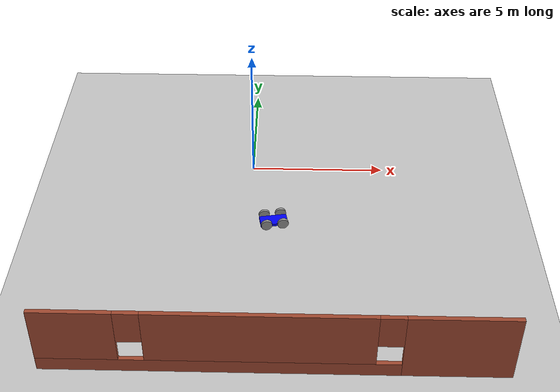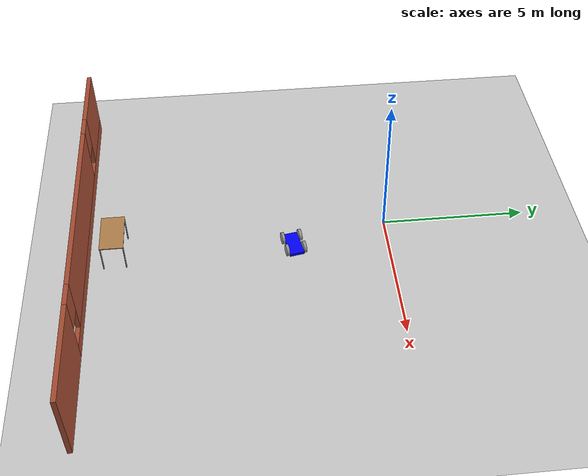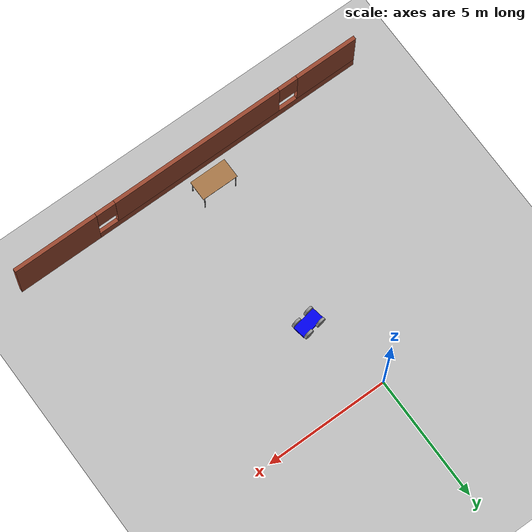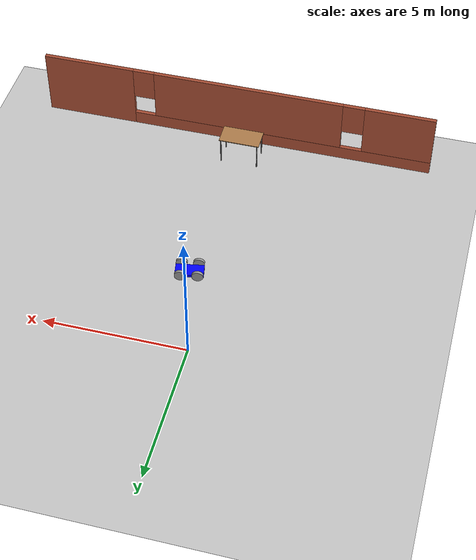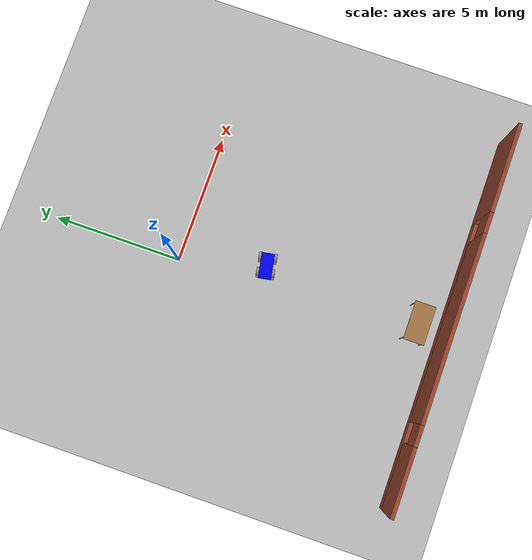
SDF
<sdf version="1.6">
 <world name="default">
  <model name="ground_plane">
   <static>1</static>
   <link name="link">
    <collision name="collision">
     <geometry><plane><normal>0 0 1</normal><size>100 100</size></plane></geometry>
     <surface>
      <contact><collide_bitmask>65535</collide_bitmask></contact>
      <friction><ode><mu>100</mu><mu2>50</mu2></ode></friction>
     </surface>
    </collision>
    <visual name="visual">
     <cast_shadows>0</cast_shadows>
     <geometry><plane><normal>0 0 1</normal><size>100 100</size></plane></geometry>
     <material>
      <script><uri>file://media/materials/scripts/gazebo.material</uri><name>Gazebo/Grey</name></script>
     </material>
    </visual>
   </link>
  </model>
  <model name="office">
   <pose>2.35048 -0.469027 0 0 -0 0</pose>
   <link name="Wall_24">
    <pose>-1.30648 -9.85573 0 0 -0 3.14159</pose>
    <visual name="Wall_24_Visual_0">
     <pose>-5.65269 0 1.25 0 -0 0</pose>
     <geometry><box><size>3.44462 0.15 2.5</size></box></geometry>
     <material>
      <script><uri>file://media/materials/scripts/gazebo.material</uri><name>Gazebo/Bricks</name></script>
      <ambient>1 1 1 1</ambient>
     </material>
     <meta><layer>0</layer></meta>
    </visual>
    <collision name="Wall_24_Collision_0">
     <geometry><box><size>3.44462 0.15 2.5</size></box></geometry>
     <pose>-5.65269 0 1.25 0 -0 0</pose>
    </collision>
    <visual name="Wall_24_Visual_1">
     <pose>1.72231 0 0.25 0 -0 0</pose>
     <geometry><box><size>11.3054 0.15 0.5</size></box></geometry>
     <material>
      <script><uri>file://media/materials/scripts/gazebo.material</uri><name>Gazebo/Bricks</name></script>
      <ambient>1 1 1 1</ambient>
     </material>
     <meta><layer>0</layer></meta>
    </visual>
    <collision name="Wall_24_Collision_1">
     <geometry><box><size>11.3054 0.15 0.5</size></box></geometry>
     <pose>1.72231 0 0.25 0 -0 0</pose>
    </collision>
    <visual name="Wall_24_Visual_2">
     <pose>0.432018 0 1.5 0 -0 0</pose>
     <geometry><box><size>7.12479 0.15 2</size></box></geometry>
     <material>
      <script><uri>file://media/materials/scripts/gazebo.material</uri><name>Gazebo/Bricks</name></script>
      <ambient>1 1 1 1</ambient>
     </material>
     <meta><layer>0</layer></meta>
    </visual>
    <collision name="Wall_24_Collision_2">
     <geometry><box><size>7.12479 0.15 2</size></box></geometry>
     <pose>0.432018 0 1.5 0 -0 0</pose>
    </collision>
    <visual name="Wall_24_Visual_3">
     <pose>6.08471 0 1.5 0 -0 0</pose>
     <geometry><box><size>2.58059 0.15 2</size></box></geometry>
     <material>
      <script><uri>file://media/materials/scripts/gazebo.material</uri><name>Gazebo/Bricks</name></script>
      <ambient>1 1 1 1</ambient>
     </material>
     <meta><layer>0</layer></meta>
    </visual>
    <collision name="Wall_24_Collision_3">
     <geometry><box><size>2.58059 0.15 2</size></box></geometry>
     <pose>6.08471 0 1.5 0 -0 0</pose>
    </collision>
    <visual name="Wall_24_Visual_4">
     <pose>-3.53038 0 1.9 0 -0 0</pose>
     <geometry><box><size>0.8 0.15 1.2</size></box></geometry>
     <material>
      <script><uri>file://media/materials/scripts/gazebo.material</uri><name>Gazebo/Bricks</name></script>
      <ambient>1 1 1 1</ambient>
     </material>
     <meta><layer>0</layer></meta>
    </visual>
    <collision name="Wall_24_Collision_4">
     <geometry><box><size>0.8 0.15 1.2</size></box></geometry>
     <pose>-3.53038 0 1.9 0 -0 0</pose>
    </collision>
    <visual name="Wall_24_Visual_5">
     <pose>4.39441 0 1.9 0 -0 0</pose>
     <geometry><box><size>0.8 0.15 1.2</size></box></geometry>
     <material>
      <script><uri>file://media/materials/scripts/gazebo.material</uri><name>Gazebo/Bricks</name></script>
      <ambient>1 1 1 1</ambient>
     </material>
     <meta><layer>0</layer></meta>
    </visual>
    <collision name="Wall_24_Collision_5">
     <geometry><box><size>0.8 0.15 1.2</size></box></geometry>
     <pose>4.39441 0 1.9 0 -0 0</pose>
    </collision>
   </link>
   <static>1</static>
  </model>
  <model name="4wdamr_0">
   <link name="link_0">
    <pose>0 0 -0.070646 0 -0 0</pose>
    <inertial>
     <mass>1</mass>
     <inertia>
      <ixx>0.166667</ixx>
      <ixy>0</ixy>
      <ixz>0</ixz>
      <iyy>0.166667</iyy>
      <iyz>0</iyz>
      <izz>0.166667</izz>
     </inertia>
    </inertial>
    <visual name="visual">
     <geometry><box><size>1 0.5 0.1</size></box></geometry>
     <material>
      <lighting>1</lighting>
      <script><uri>file://media/materials/scripts/gazebo.material</uri><name>Gazebo/Grey</name></script>
      <shader type="pixel"><normal_map>__default__</normal_map></shader>
      <ambient>0 0 1 1</ambient>
      <diffuse>0 0 1 1</diffuse>
      <specular>0 0 1 1</specular>
      <emissive>0 0 0 1</emissive>
     </material>
    </visual>
    <collision name="collision">
     <geometry><box><size>1 0.5 0.1</size></box></geometry>
     <surface>
      <friction>
       <ode><mu>1</mu><mu2>1</mu2><fdir1>0 0 0</fdir1><slip1>0</slip1><slip2>0</slip2></ode>
       <torsional>
        <coefficient>1</coefficient>
        <patch_radius>0</patch_radius>
        <surface_radius>0</surface_radius>
        <use_patch_radius>1</use_patch_radius>
        <ode><slip>0</slip></ode>
       </torsional>
      </friction>
      <bounce><restitution_coefficient>0</restitution_coefficient><threshold>1e+06</threshold></bounce>
      <contact>
       <collide_without_contact>0</collide_without_contact>
       <collide_without_contact_bitmask>1</collide_without_contact_bitmask>
       <collide_bitmask>1</collide_bitmask>
       <ode>
        <soft_cfm>0</soft_cfm>
        <soft_erp>0.2</soft_erp>
        <kp>1e+13</kp>
        <kd>1</kd>
        <max_vel>0.01</max_vel>
        <min_depth>0</min_depth>
       </ode>
       <bullet>
        <split_impulse>1</split_impulse>
        <split_impulse_penetration_threshold>-0.01</split_impulse_penetration_threshold>
        <soft_cfm>0</soft_cfm>
        <soft_erp>0.2</soft_erp>
        <kp>1e+13</kp>
        <kd>1</kd>
       </bullet>
      </contact>
     </surface>
    </collision>
   </link>
   <link name="link_1">
    <pose>-0.3 -0.300001 0.017662 1.5708 -0 0</pose>
    <inertial>
     <mass>1</mass>
     <inertia><ixx>0.145833</ixx><ixy>0</ixy><ixz>0</ixz><iyy>0.145833</iyy><iyz>0</iyz><izz>0.125</izz></inertia>
    </inertial>
    <visual name="visual">
     <geometry><cylinder><radius>0.2</radius><length>0.1</length></cylinder></geometry>
     <material>
      <lighting>1</lighting>
      <script><uri>file://media/materials/scripts/gazebo.material</uri><name>Gazebo/Grey</name></script>
      <shader type="pixel"><normal_map>__default__</normal_map></shader>
      <ambient>0 0 0 1</ambient>
      <diffuse>0 0 0 1</diffuse>
      <specular>0 0 0 1</specular>
      <emissive>0 0 0 1</emissive>
     </material>
    </visual>
    <collision name="collision">
     <geometry><cylinder><radius>0.2</radius><length>0.1</length></cylinder></geometry>
     <surface>
      <friction>
       <ode><mu>1</mu><mu2>1</mu2><fdir1>0 0 0</fdir1><slip1>0</slip1><slip2>0</slip2></ode>
       <torsional>
        <coefficient>1</coefficient>
        <patch_radius>0</patch_radius>
        <surface_radius>0</surface_radius>
        <use_patch_radius>1</use_patch_radius>
        <ode><slip>0</slip></ode>
       </torsional>
      </friction>
      <bounce><restitution_coefficient>0</restitution_coefficient><threshold>1e+06</threshold></bounce>
      <contact>
       <collide_without_contact>0</collide_without_contact>
       <collide_without_contact_bitmask>1</collide_without_contact_bitmask>
       <collide_bitmask>1</collide_bitmask>
       <ode>
        <soft_cfm>0</soft_cfm>
        <soft_erp>0.2</soft_erp>
        <kp>1e+13</kp>
        <kd>1</kd>
        <max_vel>0.01</max_vel>
        <min_depth>0</min_depth>
       </ode>
       <bullet>
        <split_impulse>1</split_impulse>
        <split_impulse_penetration_threshold>-0.01</split_impulse_penetration_threshold>
        <soft_cfm>0</soft_cfm>
        <soft_erp>0.2</soft_erp>
        <kp>1e+13</kp>
        <kd>1</kd>
       </bullet>
      </contact>
     </surface>
    </collision>
   </link>
   <link name="link_1_clone">
    <pose>0.3 -0.300001 0.017661 1.5708 -0 0</pose>
    <inertial>
     <mass>1</mass>
     <inertia><ixx>0.145833</ixx><ixy>0</ixy><ixz>0</ixz><iyy>0.145833</iyy><iyz>0</iyz><izz>0.125</izz></inertia>
    </inertial>
    <visual name="visual">
     <geometry><cylinder><radius>0.2</radius><length>0.1</length></cylinder></geometry>
     <material>
      <lighting>1</lighting>
      <script><uri>file://media/materials/scripts/gazebo.material</uri><name>Gazebo/Grey</name></script>
      <shader type="pixel"><normal_map>__default__</normal_map></shader>
      <ambient>0 0 0 1</ambient>
      <diffuse>0 0 0 1</diffuse>
      <specular>0 0 0 1</specular>
      <emissive>0 0 0 1</emissive>
     </material>
    </visual>
    <collision name="collision">
     <geometry><cylinder><radius>0.2</radius><length>0.1</length></cylinder></geometry>
     <surface>
      <friction>
       <ode><mu>1</mu><mu2>1</mu2><fdir1>0 0 0</fdir1><slip1>0</slip1><slip2>0</slip2></ode>
       <torsional>
        <coefficient>1</coefficient>
        <patch_radius>0</patch_radius>
        <surface_radius>0</surface_radius>
        <use_patch_radius>1</use_patch_radius>
        <ode><slip>0</slip></ode>
       </torsional>
      </friction>
      <bounce><restitution_coefficient>0</restitution_coefficient><threshold>1e+06</threshold></bounce>
      <contact>
       <collide_without_contact>0</collide_without_contact>
       <collide_without_contact_bitmask>1</collide_without_contact_bitmask>
       <collide_bitmask>1</collide_bitmask>
       <ode>
        <soft_cfm>0</soft_cfm>
        <soft_erp>0.2</soft_erp>
        <kp>1e+13</kp>
        <kd>1</kd>
        <max_vel>0.01</max_vel>
        <min_depth>0</min_depth>
       </ode>
       <bullet>
        <split_impulse>1</split_impulse>
        <split_impulse_penetration_threshold>-0.01</split_impulse_penetration_threshold>
        <soft_cfm>0</soft_cfm>
        <soft_erp>0.2</soft_erp>
        <kp>1e+13</kp>
        <kd>1</kd>
       </bullet>
      </contact>
     </surface>
    </collision>
   </link>
   <link name="link_1_clone_0">
    <pose>-0.3 0.300001 0.017661 1.5708 -0 0</pose>
    <inertial>
     <mass>1</mass>
     <inertia><ixx>0.145833</ixx><ixy>0</ixy><ixz>0</ixz><iyy>0.145833</iyy><iyz>0</iyz><izz>0.125</izz></inertia>
    </inertial>
    <visual name="visual">
     <geometry><cylinder><radius>0.2</radius><length>0.1</length></cylinder></geometry>
     <material>
      <lighting>1</lighting>
      <script><uri>file://media/materials/scripts/gazebo.material</uri><name>Gazebo/Grey</name></script>
      <shader type="pixel"><normal_map>__default__</normal_map></shader>
      <ambient>0 0 0 1</ambient>
      <diffuse>0 0 0 1</diffuse>
      <specular>0 0 0 1</specular>
      <emissive>0 0 0 1</emissive>
     </material>
    </visual>
    <collision name="collision">
     <geometry><cylinder><radius>0.2</radius><length>0.1</length></cylinder></geometry>
     <surface>
      <friction>
       <ode><mu>1</mu><mu2>1</mu2><fdir1>0 0 0</fdir1><slip1>0</slip1><slip2>0</slip2></ode>
       <torsional>
        <coefficient>1</coefficient>
        <patch_radius>0</patch_radius>
        <surface_radius>0</surface_radius>
        <use_patch_radius>1</use_patch_radius>
        <ode><slip>0</slip></ode>
       </torsional>
      </friction>
      <bounce><restitution_coefficient>0</restitution_coefficient><threshold>1e+06</threshold></bounce>
      <contact>
       <collide_without_contact>0</collide_without_contact>
       <collide_without_contact_bitmask>1</collide_without_contact_bitmask>
       <collide_bitmask>1</collide_bitmask>
       <ode>
        <soft_cfm>0</soft_cfm>
        <soft_erp>0.2</soft_erp>
        <kp>1e+13</kp>
        <kd>1</kd>
        <max_vel>0.01</max_vel>
        <min_depth>0</min_depth>
       </ode>
       <bullet>
        <split_impulse>1</split_impulse>
        <split_impulse_penetration_threshold>-0.01</split_impulse_penetration_threshold>
        <soft_cfm>0</soft_cfm>
        <soft_erp>0.2</soft_erp>
        <kp>1e+13</kp>
        <kd>1</kd>
       </bullet>
      </contact>
     </surface>
    </collision>
   </link>
   <link name="link_1_clone_1">
    <pose>0.3 0.300001 0.017661 1.5708 -0 0</pose>
    <inertial>
     <mass>1</mass>
     <inertia><ixx>0.145833</ixx><ixy>0</ixy><ixz>0</ixz><iyy>0.145833</iyy><iyz>0</iyz><izz>0.125</izz></inertia>
    </inertial>
    <visual name="visual">
     <geometry><cylinder><radius>0.2</radius><length>0.1</length></cylinder></geometry>
     <material>
      <lighting>1</lighting>
      <script><uri>file://media/materials/scripts/gazebo.material</uri><name>Gazebo/Grey</name></script>
      <shader type="pixel"><normal_map>__default__</normal_map></shader>
      <ambient>0 0 0 1</ambient>
      <diffuse>0 0 0 1</diffuse>
      <specular>0 0 0 1</specular>
      <emissive>0 0 0 1</emissive>
     </material>
    </visual>
    <collision name="collision">
     <geometry><cylinder><radius>0.2</radius><length>0.1</length></cylinder></geometry>
     <surface>
      <friction>
       <ode><mu>1</mu><mu2>1</mu2><fdir1>0 0 0</fdir1><slip1>0</slip1><slip2>0</slip2></ode>
       <torsional>
        <coefficient>1</coefficient>
        <patch_radius>0</patch_radius>
        <surface_radius>0</surface_radius>
        <use_patch_radius>1</use_patch_radius>
        <ode><slip>0</slip></ode>
       </torsional>
      </friction>
      <bounce><restitution_coefficient>0</restitution_coefficient><threshold>1e+06</threshold></bounce>
      <contact>
       <collide_without_contact>0</collide_without_contact>
       <collide_without_contact_bitmask>1</collide_without_contact_bitmask>
       <collide_bitmask>1</collide_bitmask>
       <ode>
        <soft_cfm>0</soft_cfm>
        <soft_erp>0.2</soft_erp>
        <kp>1e+13</kp>
        <kd>1</kd>
        <max_vel>0.01</max_vel>
        <min_depth>0</min_depth>
       </ode>
       <bullet>
        <split_impulse>1</split_impulse>
        <split_impulse_penetration_threshold>-0.01</split_impulse_penetration_threshold>
        <soft_cfm>0</soft_cfm>
        <soft_erp>0.2</soft_erp>
        <kp>1e+13</kp>
        <kd>1</kd>
       </bullet>
      </contact>
     </surface>
    </collision>
   </link>
   <joint name="link_0_JOINT_0" type="revolute">
    <parent>link_0</parent>
    <child>link_1</child>
    <axis>
     <xyz>0 0 1</xyz>
     <use_parent_model_frame>0</use_parent_model_frame>
     <limit>
      <lower>-1.79769e+308</lower>
      <upper>1.79769e+308</upper>
      <effort>-1</effort>
      <velocity>-1</velocity>
     </limit>
     <dynamics>
      <spring_reference>0</spring_reference>
      <spring_stiffness>0</spring_stiffness>
      <damping>0</damping>
     </dynamics>
    </axis>
    <physics>
     <ode><limit><cfm>0</cfm><erp>0.2</erp></limit><suspension><cfm>0</cfm><erp>0.2</erp></suspension></ode>
    </physics>
   </joint>
   <joint name="link_0_JOINT_1" type="revolute">
    <parent>link_0</parent>
    <child>link_1_clone_0</child>
    <axis>
     <xyz>0 0 1</xyz>
     <use_parent_model_frame>0</use_parent_model_frame>
     <limit>
      <lower>-1.79769e+308</lower>
      <upper>1.79769e+308</upper>
      <effort>-1</effort>
      <velocity>-1</velocity>
     </limit>
     <dynamics>
      <spring_reference>0</spring_reference>
      <spring_stiffness>0</spring_stiffness>
      <damping>0</damping>
     </dynamics>
    </axis>
    <physics>
     <ode><limit><cfm>0</cfm><erp>0.2</erp></limit><suspension><cfm>0</cfm><erp>0.2</erp></suspension></ode>
    </physics>
   </joint>
   <joint name="link_0_JOINT_2" type="revolute">
    <parent>link_0</parent>
    <child>link_1_clone</child>
    <axis>
     <xyz>0 0 1</xyz>
     <use_parent_model_frame>0</use_parent_model_frame>
     <limit>
      <lower>-1.79769e+308</lower>
      <upper>1.79769e+308</upper>
      <effort>-1</effort>
      <velocity>-1</velocity>
     </limit>
     <dynamics>
      <spring_reference>0</spring_reference>
      <spring_stiffness>0</spring_stiffness>
      <damping>0</damping>
     </dynamics>
    </axis>
    <physics>
     <ode><limit><cfm>0</cfm><erp>0.2</erp></limit><suspension><cfm>0</cfm><erp>0.2</erp></suspension></ode>
    </physics>
   </joint>
   <joint name="link_0_JOINT_3" type="revolute">
    <parent>link_0</parent>
    <child>link_1_clone_1</child>
    <axis>
     <xyz>0 0 1</xyz>
     <use_parent_model_frame>0</use_parent_model_frame>
     <limit>
      <lower>-1.79769e+308</lower>
      <upper>1.79769e+308</upper>
      <effort>-1</effort>
      <velocity>-1</velocity>
     </limit>
     <dynamics>
      <spring_reference>0</spring_reference>
      <spring_stiffness>0</spring_stiffness>
      <damping>0</damping>
     </dynamics>
    </axis>
    <physics>
     <ode><limit><cfm>0</cfm><erp>0.2</erp></limit><suspension><cfm>0</cfm><erp>0.2</erp></suspension></ode>
    </physics>
   </joint>
   <static>0</static>
   <pose>0.864183 -3.27595 0.182339 1e-06 -1e-06 0.178314</pose>
  </model>
  <model name="table_clone_4">
   <static>1</static>
   <link name="link">
    <collision name="surface">
     <pose>0 0 1 0 -0 0</pose>
     <geometry><box><size>1.5 0.8 0.03</size></box></geometry>
     <surface><friction><ode><mu>0.6</mu><mu2>0.6</mu2></ode></friction></surface>
    </collision>
    <visual name="visual1">
     <pose>0 0 1 0 -0 0</pose>
     <geometry><box><size>1.5 0.8 0.03</size></box></geometry>
     <material>
      <script><uri>file://media/materials/scripts/gazebo.material</uri><name>Gazebo/Wood</name></script>
     </material>
    </visual>
    <collision name="front_left_leg">
     <pose>0.68 0.38 0.5 0 -0 0</pose>
     <geometry><cylinder><radius>0.02</radius><length>1</length></cylinder></geometry>
    </collision>
    <visual name="front_left_leg">
     <pose>0.68 0.38 0.5 0 -0 0</pose>
     <geometry><cylinder><radius>0.02</radius><length>1</length></cylinder></geometry>
     <material>
      <script><uri>file://media/materials/scripts/gazebo.material</uri><name>Gazebo/Grey</name></script>
     </material>
    </visual>
    <collision name="front_right_leg">
     <pose>0.68 -0.38 0.5 0 -0 0</pose>
     <geometry><cylinder><radius>0.02</radius><length>1</length></cylinder></geometry>
    </collision>
    <visual name="front_right_leg">
     <pose>0.68 -0.38 0.5 0 -0 0</pose>
     <geometry><cylinder><radius>0.02</radius><length>1</length></cylinder></geometry>
     <material>
      <script><uri>file://media/materials/scripts/gazebo.material</uri><name>Gazebo/Grey</name></script>
     </material>
    </visual>
    <collision name="back_right_leg">
     <pose>-0.68 -0.38 0.5 0 -0 0</pose>
     <geometry><cylinder><radius>0.02</radius><length>1</length></cylinder></geometry>
    </collision>
    <visual name="back_right_leg">
     <pose>-0.68 -0.38 0.5 0 -0 0</pose>
     <geometry><cylinder><radius>0.02</radius><length>1</length></cylinder></geometry>
     <material>
      <script><uri>file://media/materials/scripts/gazebo.material</uri><name>Gazebo/Grey</name></script>
     </material>
    </visual>
    <collision name="back_left_leg">
     <pose>-0.68 0.38 0.5 0 -0 0</pose>
     <geometry><cylinder><radius>0.02</radius><length>1</length></cylinder></geometry>
    </collision>
    <visual name="back_left_leg">
     <pose>-0.68 0.38 0.5 0 -0 0</pose>
     <geometry><cylinder><radius>0.02</radius><length>1</length></cylinder></geometry>
     <material>
      <script><uri>file://media/materials/scripts/gazebo.material</uri><name>Gazebo/Grey</name></script>
     </material>
    </visual>
   </link>
   <pose>0.595415 -9.36904 0 0 -0 0</pose>
  </model>
 </world>
</sdf>
